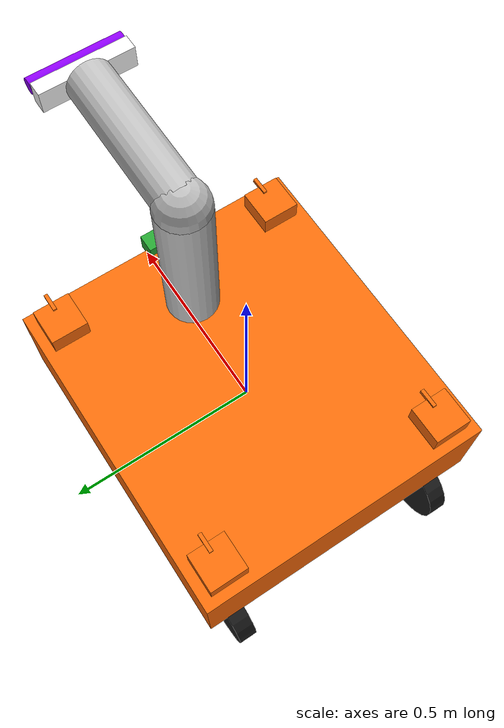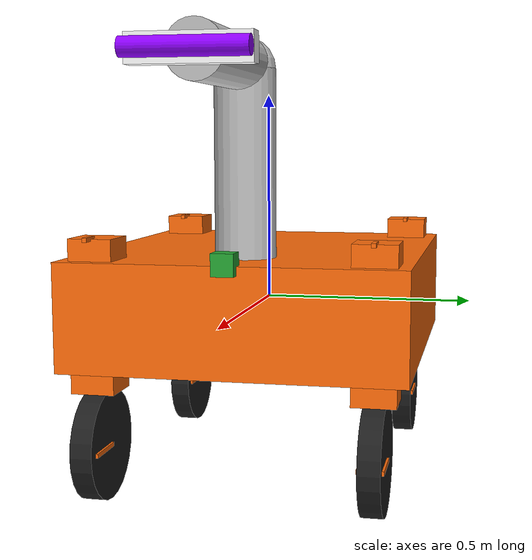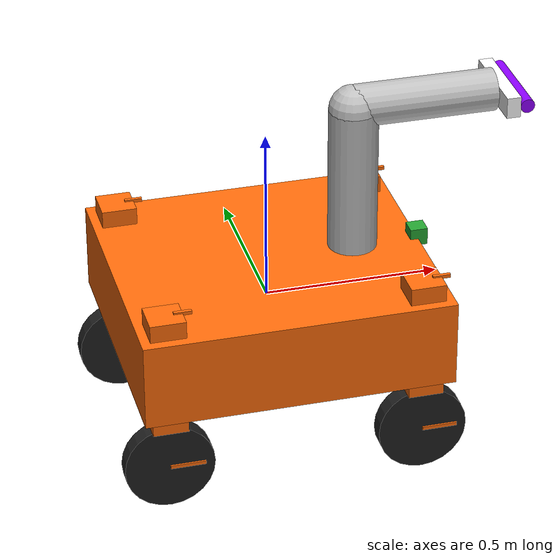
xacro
<?xml version='1.0'?>

<robot name="robot" xmlns:xacro="http://www.ros.org/wiki/xacro">

<xacro:include filename="$(find dingo)/urdf/DINGO.gazebo" />

  <link name="robot_footprint"></link>

  <joint name="robot_footprint_joint" type="fixed">
    <origin xyz="0 0 0" rpy="0 0 0" />
    <parent link="robot_footprint"/>
    <child link="chassis" />
  </joint>

  <link name='chassis'>
    <pose>0 0 0 0 0 0</pose>

    <inertial>
      <mass value="90.0"/>
      <origin xyz="0 0 0" rpy=" 0 0 0"/>
      <inertia
          ixx="${90*1/12*.876*.876}" ixy="0" ixz="0"
          iyy="${90*1/12*.787*.787}" iyz="0"
          izz="${90*1/12*(.787*.787+.876*.876)}"
      />
    </inertial>

    <collision name='collision'>
      <origin xyz="0 0 0" rpy=" 0 0 0"/>
      <geometry>
        <box size=".876 .787 .25"/>
      </geometry>
    </collision>

    <visual name='chassis_visual'>
      <origin xyz="0 0 0" rpy=" 0 0 0"/>
      <geometry>
        <box size=".876 .787 .25"/>
      </geometry>
      <material name="orange">
        <color rgba="${255/255} ${108/255} ${10/255} 1.0"/>
      </material>
    </visual>
  </link>

   <link name='front_left_steering'>
    <inertial>
      <mass value="5.0"/>
      <origin xyz="0 0 0" rpy=" 0 0 0"/>
      <inertia
          ixx="${5*1/12*.1*.1}" ixy="0" ixz="0"
          iyy="${5*1/12*.1*.1}" iyz="0"
          izz="${5*1/12*(.1*.1+.1*.1)}"
      />
    </inertial>

    <collision name='fls_collision'>
      <origin xyz="0 0 0" rpy=" 0 0 0"/>
      <geometry>
        <box size=".1 .1 .35"/>
      </geometry>
    </collision>

    <visual name='fls_visual'>
      <origin xyz="0 0 0" rpy=" 0 0 0"/>
      <geometry>
        <box size=".1 .1 .35"/>
      </geometry>
      <material name="orange">
        <color rgba="${255/255} ${108/255} ${10/255} 1.0"/>
      </material>
    </visual>
  </link>

  <link name='front_right_steering'>
    <inertial>
      <mass value="5.0"/>
      <origin xyz="0 0 0" rpy=" 0 0 0"/>
      <inertia
          ixx="${5*1/12*.1*.1}" ixy="0" ixz="0"
          iyy="${5*1/12*.1*.1}" iyz="0"
          izz="${5*1/12*(.1*.1+.1*.1)}"
      />
    </inertial>

    <collision name='frs_collision'>
      <origin xyz="0 0 0" rpy=" 0 0 0"/>
      <geometry>
        <box size=".1 .1 .35"/>
      </geometry>
    </collision>

    <visual name='frs_visual'>
      <origin xyz="0 0 0" rpy=" 0 0 0"/>
      <geometry>
        <box size=".1 .1 .35"/>
      </geometry>
      <material name="orange">
        <color rgba="${255/255} ${108/255} ${10/255} 1.0"/>
      </material>
    </visual>
  </link>

  <link name='back_left_steering'>
    <inertial>
      <mass value="5.0"/>
      <origin xyz="0 0 0" rpy=" 0 0 0"/>
      <inertia
          ixx="${5*1/12*.1*.1}" ixy="0" ixz="0"
          iyy="${5*1/12*.1*.1}" iyz="0"
          izz="${5*1/12*(.1*.1+.1*.1)}"
      />
    </inertial>

    <collision name='bs_collision'>
      <origin xyz="0 0 0" rpy=" 0 0 0"/>
      <geometry>
        <box size=".1 .1 .35"/>
      </geometry>
    </collision>

    <visual name='bs_visual'>
      <origin xyz="0 0 0" rpy=" 0 0 0"/>
      <geometry>
        <box size=".1 .1 .35"/>
      </geometry>
      <material name="orange">
        <color rgba="${255/255} ${108/255} ${10/255} 1.0"/>
      </material>
    </visual>
  </link>
  <link name='back_right_steering'>
    <inertial>
      <mass value="5.0"/>
      <origin xyz="0 0 0" rpy=" 0 0 0"/>
      <inertia
          ixx="${5*1/12*.1*.1}" ixy="0" ixz="0"
          iyy="${5*1/12*.1*.1}" iyz="0"
          izz="${5*1/12*(.1*.1+.1*.1)}"
      />
    </inertial>

    <collision name='bs_collision'>
      <origin xyz="0 0 0" rpy=" 0 0 0"/>
      <geometry>
        <box size=".1 .1 .35"/>
      </geometry>
    </collision>

    <visual name='bs_visual'>
      <origin xyz="0 0 0" rpy=" 0 0 0"/>
      <geometry>
        <box size=".1 .1 .35"/>
      </geometry>
      <material name="orange">
        <color rgba="${255/255} ${108/255} ${10/255} 1.0"/>
      </material>
    </visual>
  </link>

  <joint type="continuous" name="front_left_steering_hinge">
    <origin xyz="${.724/2} ${.631/2} 0" rpy="0 0 0"/>
    <child link="front_left_steering"/>
    <parent link="chassis"/>
    <axis xyz="0 0 1" rpy="0 0 0"/>
    <limit effort="1000" velocity=".7"/>
    <dynamics damping="1.0" friction="1.0"/>
  </joint>
  <joint type="continuous" name="front_right_steering_hinge">
    <origin xyz="${.724/2} ${-.631/2} 0" rpy="0 0 0"/>
    <child link="front_right_steering"/>
    <parent link="chassis"/>
    <axis xyz="0 0 1" rpy="0 0 0"/>
    <limit effort="1000" velocity=".7"/>
    <dynamics damping="1.0" friction="1.0"/>
  </joint>

  <joint type="continuous" name="back_left_steering_hinge">
    <origin xyz="${-.724/2} ${.631/2} 0" rpy="0 0 0"/>
    <child link="back_left_steering"/>
    <parent link="chassis"/>
    <axis xyz="0 0 1" rpy="0 0 0"/>
    <limit effort="1000" velocity=".7"/>
    <dynamics damping="1.0" friction="1.0"/>
  </joint>

  <joint type="continuous" name="back_right_steering_hinge">
    <origin xyz="${-.724/2} ${-.631/2} 0" rpy="0 0 0"/>
    <child link="back_right_steering"/>
    <parent link="chassis"/>
    <axis xyz="0 0 1" rpy="0 0 0"/>
    <limit effort="1000" velocity=".7"/>
    <dynamics damping="1.0" friction="1.0"/>
  </joint>

  <link name='front_left_wheel'>
    <collision name='front_left_wheel_collision'>
      <origin xyz="0 0 0" rpy=" 0 1.5707 1.5707"/>
      <geometry>
        <cylinder radius="0.127" length=".05"/>
      </geometry>
    </collision>

    <inertial>
      <mass value="10.0"/>
      <origin xyz="0.0 0 0" rpy=" 0 1.5707 1.5707"/>
      <inertia
          ixx="${10*1/12*3*.127*.127}" ixy="0" ixz="0"
          iyy="${10*1/12*3*.127*.127}" iyz="0"
          izz="${10*1/2*.127*.127}"
      />
    </inertial>

    <visual name='front_left_wheel_visual'>
      <origin xyz="0 0 0" rpy=" 0 1.5707 1.5707"/>
      <geometry>
        <cylinder radius="0.127" length=".05"/>
      </geometry>
    </visual>
  </link>

  <link name='front_right_wheel'>
    <collision name='front_right_wheel_collision'>
      <origin xyz="0 0 0" rpy=" 0 1.5707 1.5707"/>
      <geometry>
        <cylinder radius="0.127" length=".05"/>
      </geometry>
    </collision>

    <inertial>
      <mass value="10.0"/>
      <origin xyz="0.0 0 0" rpy=" 0 1.5707 1.5707"/>
      <inertia
          ixx="${10*1/12*3*.127*.127}" ixy="0" ixz="0"
          iyy="${10*1/12*3*.127*.127}" iyz="0"
          izz="${10*1/2*.127*.127}"
      />
    </inertial>

    <visual name='front_right_wheel_visual'>
      <origin xyz="0 0 0" rpy=" 0 1.5707 1.5707"/>
      <geometry>
        <cylinder radius="0.127" length=".05"/>
      </geometry>
    </visual>
  </link>

  <link name='back_left_wheel'>
    <collision name='back_left_wheel_collision'>
      <origin xyz="0 0 0" rpy=" 0 1.5707 1.5707"/>
      <geometry>
        <cylinder radius="0.127" length=".05"/>
      </geometry>
    </collision>

    <inertial>
      <mass value="10.0"/>
      <origin xyz="0.0 0 0" rpy=" 0 1.5707 1.5707"/>
      <inertia
          ixx="${10*1/12*3*.127*.127}" ixy="0" ixz="0"
          iyy="${10*1/12*3.127*.127}" iyz="0"
          izz="${10*1/2*.127*.127}"
      />
    </inertial>

    <visual name='back_left_wheel_visual'>
      <origin xyz="0 0 0" rpy=" 0 1.5707 1.5707"/>
      <geometry>
        <cylinder radius="0.127" length=".05"/>
      </geometry>
    </visual>
  </link>

  <link name='back_right_wheel'>
    <collision name='back_right_wheel_collision'>
      <origin xyz="0 0 0" rpy=" 0 1.5707 1.5707"/>
      <geometry>
        <cylinder radius="0.127" length=".05"/>
      </geometry>
    </collision>

    <inertial>
      <mass value="10.0"/>
      <origin xyz="0.0 0 0" rpy=" 0 1.5707 1.5707"/>
      <inertia
          ixx="${10*1/12*3*.127*.127}" ixy="0" ixz="0"
          iyy="${10*1/12*3.127*.127}" iyz="0"
          izz="${10*1/2*.127*.127}"
      />
    </inertial>

    <visual name='back_right_wheel_visual'>
      <origin xyz="0 0 0" rpy=" 0 1.5707 1.5707"/>
      <geometry>
        <cylinder radius="0.127" length=".05"/>
      </geometry>
    </visual>
  </link>

  <joint type="continuous" name="front_left_wheel_hinge">
    <origin xyz="0 0 -.3" rpy="0 0 0"/>
    <child link="front_left_wheel"/>
    <parent link="front_left_steering"/>
    <axis xyz="0 1 0" rpy="0 0 0"/>
    <limit effort="10000" velocity="1000"/>
    <dynamics damping="1.0" friction="1.0"/>
  </joint>
  <joint type="continuous" name="front_right_wheel_hinge">
    <origin xyz="0 0 -.3" rpy="0 0 0"/>
    <child link="front_right_wheel"/>
    <parent link="front_right_steering"/>
    <axis xyz="0 1 0" rpy="0 0 0"/>
    <limit effort="10000" velocity="1000"/>
    <dynamics damping="1.0" friction="1.0"/>
  </joint>

  <joint type="continuous" name="back_left_wheel_hinge">
    <origin xyz="0 0 -.3" rpy="0 0 0"/>
    <child link="back_left_wheel"/>
    <parent link="back_left_steering"/>
    <axis xyz="0 1 0" rpy="0 0 0"/>
    <limit effort="10000" velocity="1000"/>
    <dynamics damping="1.0" friction="1.0"/>
  </joint>
  <joint type="continuous" name="back_right_wheel_hinge">
    <origin xyz="0 0 -.3" rpy="0 0 0"/>
    <child link="back_right_wheel"/>
    <parent link="back_right_steering"/>
    <axis xyz="0 1 0" rpy="0 0 0"/>
    <limit effort="10000" velocity="1000"/>
    <dynamics damping="1.0" friction="1.0"/>
  </joint>

  <link name='camera'>
    <collision name='camera_collision'>
      <origin xyz="0 0 0" rpy=" 0 0 0"/>
      <geometry>
        <box size=".05 .05 .05"/>
      </geometry>
    </collision>

    <inertial>
      <mass value="0.1"/>
      <origin xyz="0.0 0 0" rpy=" 0 0 0"/>
      <inertia
          ixx="1e-6" ixy="0" ixz="0"
          iyy="1e-6" iyz="0"
          izz="1e-6"
      />
      <box_intertia
      m="0.1" x="0.05" y="0.05" z="0.05"
      />
    </inertial>

    <visual name='camera_visual'>
      <origin xyz="0 0 0" rpy=" 0 0 0"/>
      <geometry>
        <box size=".05 .05 .05"/>
      </geometry>
    </visual>

  </link>

  <joint type="fixed" name="camera_joint">
    <origin xyz="0.44 0 .13" rpy="0 0 0"/>
    <child link="camera"/>
    <parent link="chassis"/>
  </joint>

  <transmission name="tran1">
    <type>transmission_interface/SimpleTransmission</type>
    <joint name="front_left_wheel_hinge">
      <hardwareInterface>hardware_interface/EffortJointInterface</hardwareInterface>
    </joint>
    <actuator name="motor1">
      <hardwareInterface>hardware_interface/EffortJointInterface</hardwareInterface>
      <mechanicalReduction>1</mechanicalReduction>
    </actuator>
  </transmission>
  <transmission name="tran2">
    <type>transmission_interface/SimpleTransmission</type>
    <joint name="front_right_wheel_hinge">
      <hardwareInterface>hardware_interface/EffortJointInterface</hardwareInterface>
    </joint>
    <actuator name="motor2">
      <hardwareInterface>hardware_interface/EffortJointInterface</hardwareInterface>
      <mechanicalReduction>1</mechanicalReduction>
    </actuator>
  </transmission>

  <transmission name="tran3">
    <type>transmission_interface/SimpleTransmission</type>
    <joint name="back_left_wheel_hinge">
      <hardwareInterface>hardware_interface/EffortJointInterface</hardwareInterface>
    </joint>
    <actuator name="motor3">
      <hardwareInterface>hardware_interface/EffortJointInterface</hardwareInterface>
      <mechanicalReduction>1</mechanicalReduction>
    </actuator>
  </transmission>

  <transmission name="tran4">
    <type>transmission_interface/SimpleTransmission</type>
    <joint name="back_right_wheel_hinge">
      <hardwareInterface>hardware_interface/EffortJointInterface</hardwareInterface>
    </joint>
    <actuator name="motor4">
      <hardwareInterface>hardware_interface/EffortJointInterface</hardwareInterface>
      <mechanicalReduction>1</mechanicalReduction>
    </actuator>
  </transmission>

  <transmission name="tran5">
    <type>transmission_interface/SimpleTransmission</type>
    <joint name="front_left_steering_hinge">
      <hardwareInterface>hardware_interface/EffortJointInterface</hardwareInterface>
    </joint>
    <actuator name="motor5">
      <hardwareInterface>hardware_interface/EffortJointInterface</hardwareInterface>
      <mechanicalReduction>1000</mechanicalReduction>
    </actuator>
  </transmission>
  <transmission name="tran6">
    <type>transmission_interface/SimpleTransmission</type>
    <joint name="front_right_steering_hinge">
      <hardwareInterface>hardware_interface/EffortJointInterface</hardwareInterface>
    </joint>
    <actuator name="motor6">
      <hardwareInterface>hardware_interface/EffortJointInterface</hardwareInterface>
      <mechanicalReduction>1000</mechanicalReduction>
    </actuator>
  </transmission>

  <transmission name="tran7">
    <type>transmission_interface/SimpleTransmission</type>
    <joint name="back_left_steering_hinge">
      <hardwareInterface>hardware_interface/EffortJointInterface</hardwareInterface>
    </joint>
    <actuator name="motor7">
      <hardwareInterface>hardware_interface/EffortJointInterface</hardwareInterface>
      <mechanicalReduction>1000</mechanicalReduction>
    </actuator>
  </transmission>

  <transmission name="tran8">
    <type>transmission_interface/SimpleTransmission</type>
    <joint name="back_right_steering_hinge">
      <hardwareInterface>hardware_interface/EffortJointInterface</hardwareInterface>
    </joint>
    <actuator name="motor8">
      <hardwareInterface>hardware_interface/EffortJointInterface</hardwareInterface>
      <mechanicalReduction>1000</mechanicalReduction>
    </actuator>
  </transmission>

  <link name='arrow1'>
    <inertial>
      <mass value="1.0"/>
      <origin xyz="0 0 0" rpy=" 0 0 0"/>
      <inertia
          ixx=".1" ixy="0" ixz="0"
          iyy=".1" iyz="0"
          izz=".1"
      />
    </inertial>

    <collision name='arrow1_collision'>
      <origin xyz="0 0 0" rpy=" 0 0 0"/>
      <geometry>
        <box size=".05 .01 .01"/>
      </geometry>
    </collision>

    <visual name='arrow1_visual'>
      <origin xyz="0 0 0" rpy=" 0 0 0"/>
      <geometry>
        <box size=".05 .01 .01"/>
      </geometry>
      <material name="orange">
        <color rgba="${255/255} ${108/255} ${10/255} 1.0"/>
      </material>
    </visual>
  </link>

  <link name='arrow2'>
    <inertial>
      <mass value="1.0"/>
      <origin xyz="0 0 0" rpy=" 0 0 0"/>
      <inertia
          ixx=".1" ixy="0" ixz="0"
          iyy=".1" iyz="0"
          izz=".1"
      />
    </inertial>

    <collision name='arrow2_collision'>
      <origin xyz="0 0 0" rpy=" 0 0 0"/>
      <geometry>
        <box size=".05 .01 .01"/>
      </geometry>
    </collision>

    <visual name='arrow2_visual'>
      <origin xyz="0 0 0" rpy=" 0 0 0"/>
      <geometry>
        <box size=".05 .01 .01"/>
      </geometry>
      <material name="orange">
        <color rgba="${255/255} ${108/255} ${10/255} 1.0"/>
      </material>
    </visual>
  </link>

  <link name='arrow3'>
    <inertial>
      <mass value="1.0"/>
      <origin xyz="0 0 0" rpy=" 0 0 0"/>
      <inertia
          ixx=".1" ixy="0" ixz="0"
          iyy=".1" iyz="0"
          izz=".1"
      />
    </inertial>

    <collision name='arrow3_collision'>
      <origin xyz="0 0 0" rpy=" 0 0 0"/>
      <geometry>
        <box size=".05 .01 .01"/>
      </geometry>
    </collision>

    <visual name='arrow3_visual'>
      <origin xyz="0 0 0" rpy=" 0 0 0"/>
      <geometry>
        <box size=".05 .01 .01"/>
      </geometry>
      <material name="orange">
        <color rgba="${255/255} ${108/255} ${10/255} 1.0"/>
      </material>
    </visual>
  </link>

  <link name='arrow4'>
    <inertial>
      <mass value="1.0"/>
      <origin xyz="0 0 0" rpy=" 0 0 0"/>
      <inertia
          ixx=".1" ixy="0" ixz="0"
          iyy=".1" iyz="0"
          izz=".1"
      />
    </inertial>

    <collision name='arrow4_collision'>
      <origin xyz="0 0 0" rpy=" 0 0 0"/>
      <geometry>
        <box size=".05 .01 .01"/>
      </geometry>
    </collision>

    <visual name='arrow4_visual'>
      <origin xyz="0 0 0" rpy=" 0 0 0"/>
      <geometry>
        <box size=".05 .01 .01"/>
      </geometry>
      <material name="orange">
        <color rgba="${255/255} ${108/255} ${10/255} 1.0"/>
      </material>
    </visual>
  </link>

  <joint type="fixed" name="arrow1">
    <origin xyz=".05 0 .175" rpy="0 0 0"/>
    <child link="arrow1"/>
    <parent link="front_left_steering"/>
  </joint>

  <joint type="fixed" name="arrow2">
    <origin xyz=".05 0 .175" rpy="0 0 0"/>
    <child link="arrow2"/>
    <parent link="front_right_steering"/>
  </joint>

  <joint type="fixed" name="arrow3">
    <origin xyz=".05 0 .175" rpy="0 0 0"/>
    <child link="arrow3"/>
    <parent link="back_left_steering"/>
  </joint>

  <joint type="fixed" name="arrow4">
    <origin xyz=".05 0 .175" rpy="0 0 0"/>
    <child link="arrow4"/>
    <parent link="back_right_steering"/>
  </joint>

    <link name='arrow5'>
    <inertial>
      <mass value="1.0"/>
      <origin xyz="0 0 0" rpy=" 0 0 0"/>
      <inertia
          ixx=".1" ixy="0" ixz="0"
          iyy=".1" iyz="0"
          izz=".1"
      />
    </inertial>

    <collision name='arrow5_collision'>
      <origin xyz="0 0 0" rpy=" 0 0 0"/>
      <geometry>
        <box size=".1 .06 .01"/>
      </geometry>
    </collision>

    <visual name='arrow5_visual'>
      <origin xyz="0 0 0" rpy=" 0 0 0"/>
      <geometry>
        <box size=".1 .06 .01"/>
      </geometry>
      <material name="orange">
        <color rgba="${255/255} ${108/255} ${10/255} 1.0"/>
      </material>
    </visual>
  </link>

  <link name='arrow6'>
    <inertial>
      <mass value="1.0"/>
      <origin xyz="0 0 0" rpy=" 0 0 0"/>
      <inertia
          ixx=".1" ixy="0" ixz="0"
          iyy=".1" iyz="0"
          izz=".1"
      />
    </inertial>

    <collision name='arrow6_collision'>
      <origin xyz="0 0 0" rpy=" 0 0 0"/>
      <geometry>
        <box size=".1 .06 .01"/>
      </geometry>
    </collision>

    <visual name='arrow6_visual'>
      <origin xyz="0 0 0" rpy=" 0 0 0"/>
      <geometry>
        <box size=".1 .06 .01"/>
      </geometry>
      <material name="orange">
        <color rgba="${255/255} ${108/255} ${10/255} 1.0"/>
      </material>
    </visual>
  </link>

  <link name='arrow7'>
    <inertial>
      <mass value="1.0"/>
      <origin xyz="0 0 0" rpy=" 0 0 0"/>
      <inertia
          ixx=".1" ixy="0" ixz="0"
          iyy=".1" iyz="0"
          izz=".1"
      />
    </inertial>

    <collision name='arrow7_collision'>
      <origin xyz="0 0 0" rpy=" 0 0 0"/>
      <geometry>
        <box size=".1 .06 .01"/>
      </geometry>
    </collision>

    <visual name='arrow7_visual'>
      <origin xyz="0 0 0" rpy=" 0 0 0"/>
      <geometry>
        <box size=".1 .06 .01"/>
      </geometry>
      <material name="orange">
        <color rgba="${255/255} ${108/255} ${10/255} 1.0"/>
      </material>
    </visual>
  </link>

  <link name='arrow8'>
    <inertial>
      <mass value="1.0"/>
      <origin xyz="0 0 0" rpy=" 0 0 0"/>
      <inertia
          ixx=".1" ixy="0" ixz="0"
          iyy=".1" iyz="0"
          izz=".1"
      />
    </inertial>

    <collision name='arrow8_collision'>
      <origin xyz="0 0 0" rpy=" 0 0 0"/>
      <geometry>
        <box size=".1 .06 .01"/>
      </geometry>
    </collision>

    <visual name='arrow8_visual'>
      <origin xyz="0 0 0" rpy=" 0 0 0"/>
      <geometry>
        <box size=".1 .06 .01"/>
      </geometry>
      <material name="orange">
        <color rgba="${255/255} ${108/255} ${10/255} 1.0"/>
      </material>
    </visual>
  </link>

  <joint type="fixed" name="arrow5">
    <origin xyz=".05 0 0" rpy="0 0 0"/>
    <child link="arrow5"/>
    <parent link="front_left_wheel"/>
  </joint>

  <joint type="fixed" name="arrow6">
    <origin xyz=".05 0 0" rpy="0 0 0"/>
    <child link="arrow6"/>
    <parent link="front_right_wheel"/>
  </joint>

  <joint type="fixed" name="arrow7">
    <origin xyz=".05 0 0" rpy="0 0 0"/>
    <child link="arrow7"/>
    <parent link="back_left_wheel"/>
  </joint>

  <joint type="fixed" name="arrow8">
    <origin xyz=".05 0 0" rpy="0 0 0"/>
    <child link="arrow8"/>
    <parent link="back_right_wheel"/>
  </joint>

  <link name='arm1'>
    <visual name='arm1'>
      <origin xyz="0 0 0" rpy=" 0 1.5707 1.5707"/>
      <geometry>
        <cylinder radius="0.07" length=".6"/>
      </geometry>
      <material name="Silver">
        <color rgba="${192/255} ${192/255} ${192/255} 1.0"/>
      </material>
    </visual>
  </link>

  <link name='arm2'>
    <visual name='arm2'>
      <origin xyz="0 0 0" rpy=" 0 1.5707 1.5707"/>
      <geometry>
        <cylinder radius="0.06" length=".4"/>
      </geometry>
      <material name="Silver">
        <color rgba="${192/255} ${192/255} ${192/255} 1.0"/>
      </material>
    </visual>
  </link>

  <link name='ball'>
    <visual name='ball'>
      <origin xyz="0 0 0" rpy=" 0 1.5707 1.5707"/>
      <geometry>
        <sphere radius="0.07"/>
      </geometry>
      <material name="Silver">
        <color rgba="${192/255} ${192/255} ${192/255} 1.0"/>
      </material>
    </visual>
  </link>

  <link name='lamp1'>
    <visual name='lamp1'>
      <origin xyz="0 0 0" rpy=" 0 0 0"/>
      <geometry>
        <box size="0.06 0.04 0.25"/>
      </geometry>
      <material name="DarkSilver">
        <color rgba="${255/255} ${255/255} ${255/255} 1.0"/>
      </material>
    </visual>
  </link>
    <link name='lamp2'>
    <visual name='lamp2'>
      <origin xyz="0 0 0" rpy=" 0 0 0"/>
      <geometry>
        <cylinder radius="0.02" length=".25"/>
      </geometry>
      <material name="Blue">
        <color rgba="${143/255} ${0/255} ${255/255} 1.0"/>
      </material>
    </visual>
  </link>

  <joint type="fixed" name="arm1">
    <origin xyz=".25 0 .25" rpy="1.5707 0 0"/>
    <child link="arm1"/>
    <parent link="chassis"/>
  </joint>
  <joint type="fixed" name="arm2">
    <origin xyz=".2 .31 0" rpy="1.5707 1.5707 0"/>
    <child link="arm2"/>
    <parent link="arm1"/>
  </joint>
  <joint type="fixed" name="ball">
    <origin xyz="0 .3 0" rpy="0 0 0"/>
    <child link="ball"/>
    <parent link="arm1"/>
  </joint>
  <joint type="fixed" name="lamp1">
    <origin xyz="0 .22 0" rpy="0 1.5707 0"/>
    <child link="lamp1"/>
    <parent link="arm2"/>
  </joint>
    <joint type="fixed" name="lamp2">
    <origin xyz="0 .04 0" rpy="0 0 0"/>
    <child link="lamp2"/>
    <parent link="lamp1"/>
  </joint>

</robot>
